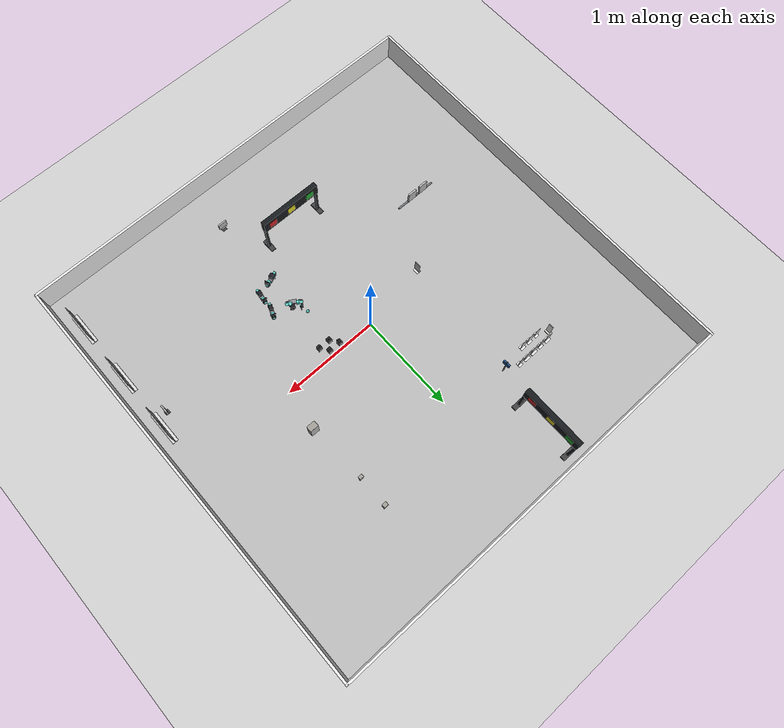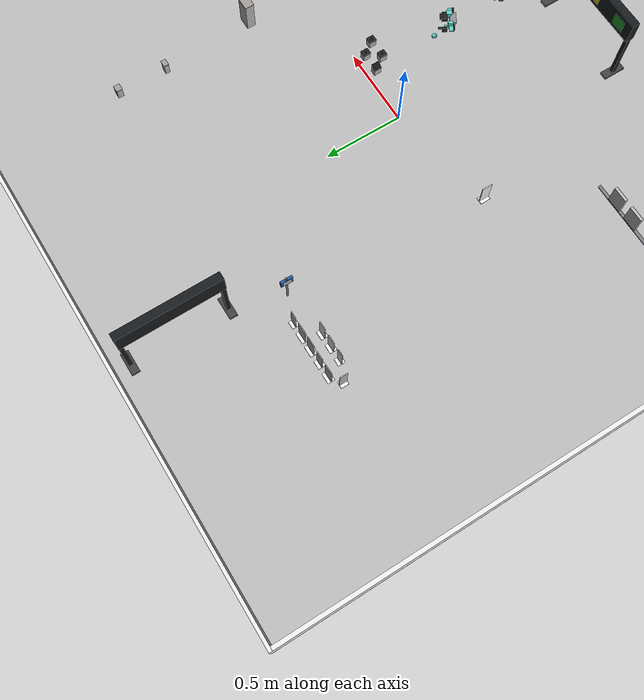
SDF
<sdf version="1.6">
 <world name="competition_arena">
  <physics name="arena_physics" default="0" type="ode">
   <max_step_size>0.002</max_step_size>
   <real_time_factor>1.0</real_time_factor>
   <real_time_update_rate>500</real_time_update_rate>
   <ode><solver><type>quick</type><iters>50</iters><sor>1.3</sor></solver></ode>
  </physics>
  <include><uri>model://sun</uri></include>
  <model name="arena_floor">
   <static>true</static>
   <pose>0 0 -0.01000 0 0 0</pose>
   <link name="link">
    <collision name="collision">
     <geometry><box><size>4.400 4.400 0.0200</size></box></geometry>
     <surface>
      <friction><ode><mu>1.0</mu><mu2>1.0</mu2></ode></friction>
      <contact><ode><kp>1e10</kp><kd>1</kd></ode></contact>
     </surface>
    </collision>
    <visual name="visual">
     <geometry><box><size>4.400 4.400 0.0200</size></box></geometry>
     <material>
      <script><uri>file://media/materials/scripts/arena.material</uri><name>Arena/Floor</name></script>
     </material>
    </visual>
   </link>
  </model>
  <include><uri>model://ground_plane</uri><pose>0 0 -0.002 0 0 0</pose></include>
  <model name="arena_walls">
   <static>true</static>
   <link name="walls">
    <collision name="wall_00">
     <pose>-0.000000 2.189289 0.150000 0 0 0</pose>
     <geometry><box><size>4.399182 0.020605 0.300000</size></box></geometry>
    </collision>
    <visual name="wall_00">
     <pose>-0.000000 2.189289 0.150000 0 0 0</pose>
     <geometry><box><size>4.399182 0.020605 0.300000</size></box></geometry>
     <material>
      <script><uri>file://media/materials/scripts/gazebo.material</uri><name>Gazebo/White</name></script>
     </material>
    </visual>
    <collision name="wall_01">
     <pose>-0.000000 -2.187572 0.150000 0 0 0</pose>
     <geometry><box><size>4.399182 0.024039 0.300000</size></box></geometry>
    </collision>
    <visual name="wall_01">
     <pose>-0.000000 -2.187572 0.150000 0 0 0</pose>
     <geometry><box><size>4.399182 0.024039 0.300000</size></box></geometry>
     <material>
      <script><uri>file://media/materials/scripts/gazebo.material</uri><name>Gazebo/White</name></script>
     </material>
    </visual>
    <collision name="wall_02">
     <pose>-2.187572 0.000000 0.150000 0 0 0</pose>
     <geometry><box><size>0.024039 4.399182 0.300000</size></box></geometry>
    </collision>
    <visual name="wall_02">
     <pose>-2.187572 0.000000 0.150000 0 0 0</pose>
     <geometry><box><size>0.024039 4.399182 0.300000</size></box></geometry>
     <material>
      <script><uri>file://media/materials/scripts/gazebo.material</uri><name>Gazebo/White</name></script>
     </material>
    </visual>
    <collision name="wall_03">
     <pose>2.187572 0.000000 0.150000 0 0 0</pose>
     <geometry><box><size>0.024039 4.399182 0.300000</size></box></geometry>
    </collision>
    <visual name="wall_03">
     <pose>2.187572 0.000000 0.150000 0 0 0</pose>
     <geometry><box><size>0.024039 4.399182 0.300000</size></box></geometry>
     <material>
      <script><uri>file://media/materials/scripts/gazebo.material</uri><name>Gazebo/White</name></script>
     </material>
    </visual>
   </link>
  </model>
  <include>
   <uri>model://standee_c01</uri>
   <name>A_north_1</name>
   <pose>-1.1420 1.2080 0 0 0 -1.5708</pose>
  </include>
  <include>
   <uri>model://standee_c02</uri>
   <name>A_north_2</name>
   <pose>-1.0520 1.2080 0 0 0 -1.5708</pose>
  </include>
  <include>
   <uri>model://standee_c03</uri>
   <name>A_north_3</name>
   <pose>-0.9620 1.2080 0 0 0 -1.5708</pose>
  </include>
  <include>
   <uri>model://standee_c04</uri>
   <name>A_north_4</name>
   <pose>-0.8720 1.2080 0 0 0 -1.5708</pose>
  </include>
  <include>
   <uri>model://standee_c05</uri>
   <name>A_north_5</name>
   <pose>-0.7820 1.2080 0 0 0 -1.5708</pose>
  </include>
  <include>
   <uri>model://standee_c06</uri>
   <name>A_south_1</name>
   <pose>-1.0970 1.1070 0 0 0 1.5708</pose>
  </include>
  <include>
   <uri>model://standee_c07</uri>
   <name>A_south_2</name>
   <pose>-1.0070 1.1070 0 0 0 1.5708</pose>
  </include>
  <include>
   <uri>model://standee_c08</uri>
   <name>A_south_3</name>
   <pose>-0.9170 1.1070 0 0 0 1.5708</pose>
  </include>
  <include><uri>model://standee_F1</uri><name>A_west_1</name><pose>-1.2120 1.1575 0 0 0 0.0000</pose></include>
  <include><uri>model://standee_F2</uri><name>B_east_2</name><pose>-0.7070 -0.1250 0 0 0 3.1416</pose></include>
  <include>
   <uri>model://traffic_light_h</uri>
   <name>tl_top</name>
   <pose>-0.5060 1.7790 0.0020 0 0 0.0000</pose>
  </include>
  <include>
   <uri>model://traffic_light_h</uri>
   <name>tl_bot</name>
   <pose>-0.1100 -1.2800 0.0020 0 0 1.5708</pose>
  </include>
  <include><uri>model://car_1</uri><name>car_1_p</name><pose>2.0560 -0.5010 0 0 0 3.1416</pose></include>
  <include><uri>model://car_2</uri><name>car_2_p</name><pose>2.0560 -1.1245 0 0 0 3.1416</pose></include>
  <include><uri>model://car_3</uri><name>car_3_p</name><pose>2.0560 -1.7620 0 0 0 3.1416</pose></include>
  <include><uri>model://bldg_15</uri><name>bldg_15</name><pose>1.0200 1.3400 0 0 0 3.1416</pose></include>
  <include><uri>model://bldg_11</uri><name>bldg_11</name><pose>1.0200 1.0200 0 0 0 3.1416</pose></include>
  <include><uri>model://bldg_20</uri><name>bldg_20</name><pose>1.0600 0.4200 0 0 0 3.1416</pose></include>
  <include><uri>model://bin_red</uri><name>bin_1</name><pose>0.3400 -0.0600 0 0 0 0.0000</pose></include>
  <include><uri>model://bin_blue</uri><name>bin_2</name><pose>0.4000 -0.1400 0 0 0 0.0000</pose></include>
  <include><uri>model://bin_green</uri><name>bin_3</name><pose>0.4600 -0.0600 0 0 0 0.0000</pose></include>
  <include><uri>model://bin_gray</uri><name>bin_4</name><pose>0.5200 -0.1400 0 0 0 0.0000</pose></include>
  <include><uri>model://ebike</uri><name>ebike_1</name><pose>0.6200 -0.7200 0 0 0 1.2000</pose></include>
  <include><uri>model://ebike</uri><name>ebike_2</name><pose>0.6000 -0.9000 0 0 0 1.4500</pose></include>
  <include>
   <uri>model://ebike_toppled</uri>
   <name>ebike_3</name>
   <pose>0.4000 -0.6600 0 0 0 2.6000</pose>
  </include>
  <include><uri>model://ebike</uri><name>ebike_4</name><pose>0.4200 -0.9800 0 0 0 0.4000</pose></include>
  <include><uri>model://helmet</uri><name>helmet_1</name><pose>0.3600 -0.5000 0 0 0 0.4000</pose></include>
  <include><uri>model://gauge</uri><name>gauge_1</name><pose>0.4200 -1.7200 0 0 0 0.0000</pose></include>
  <include><uri>model://gauge</uri><name>gauge_2</name><pose>1.9500 -0.6000 0 0 0 -1.5708</pose></include>
  <include><uri>model://sign</uri><name>sign_1</name><pose>-0.6200 1.1500 0 0 0 -1.5708</pose></include>
  <include><uri>model://heat_ok</uri><name>heat_1</name><pose>-1.3000 -0.7200 0 0 0 0.0000</pose></include>
  <include><uri>model://heat_bad</uri><name>heat_2</name><pose>-1.1600 -0.7200 0 0 0 0.0000</pose></include>
 </world>
</sdf>

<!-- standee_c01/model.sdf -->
<sdf version="1.7">
  <model name="standee_c01">
    <static>true</static>
    <link name="link">
      <visual name="board">
        <pose>0 0 0.0790 0 0 0</pose>
        <geometry><box><size>0.0050 0.0661 0.1500</size></box></geometry>
        <material><ambient>0.94 0.94 0.93 1</ambient><diffuse>0.94 0.94 0.93 1</diffuse></material>
      </visual>
      <visual name="art">
        <pose>-0.0020 0 0.0790 0 0 0</pose>
        <geometry><box><size>0.0012 0.0661 0.1500</size></box></geometry>
        <material>
          <script>
            <uri>model://standee_c01/materials/scripts</uri>
            <uri>model://standee_c01/materials/textures</uri>
            <name>Standee/c01</name>
          </script>
        </material>
      </visual>
      <visual name="base">
        <pose>0 0 0.0020 0 0 0</pose>
        <geometry><box><size>0.0450 0.0661 0.0040</size></box></geometry>
        <material><ambient>0.92 0.92 0.92 1</ambient><diffuse>0.92 0.92 0.92 1</diffuse></material>
      </visual>
      <collision name="col">
        <pose>0 0 0.0790 0 0 0</pose>
        <geometry><box><size>0.0050 0.0500 0.1500</size></box></geometry>
      </collision>
      <collision name="base_c">
        <pose>0 0 0.0020 0 0 0</pose>
        <geometry><box><size>0.0450 0.0661 0.0040</size></box></geometry>
      </collision>
    </link>
  </model>
</sdf>

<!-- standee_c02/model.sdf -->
<sdf version="1.7">
  <model name="standee_c02">
    <static>true</static>
    <link name="link">
      <visual name="board">
        <pose>0 0 0.0790 0 0 0</pose>
        <geometry><box><size>0.0050 0.0542 0.1500</size></box></geometry>
        <material><ambient>0.94 0.94 0.93 1</ambient><diffuse>0.94 0.94 0.93 1</diffuse></material>
      </visual>
      <visual name="art">
        <pose>-0.0020 0 0.0790 0 0 0</pose>
        <geometry><box><size>0.0012 0.0542 0.1500</size></box></geometry>
        <material>
          <script>
            <uri>model://standee_c02/materials/scripts</uri>
            <uri>model://standee_c02/materials/textures</uri>
            <name>Standee/c02</name>
          </script>
        </material>
      </visual>
      <visual name="base">
        <pose>0 0 0.0020 0 0 0</pose>
        <geometry><box><size>0.0450 0.0542 0.0040</size></box></geometry>
        <material><ambient>0.92 0.92 0.92 1</ambient><diffuse>0.92 0.92 0.92 1</diffuse></material>
      </visual>
      <collision name="col">
        <pose>0 0 0.0790 0 0 0</pose>
        <geometry><box><size>0.0050 0.0500 0.1500</size></box></geometry>
      </collision>
      <collision name="base_c">
        <pose>0 0 0.0020 0 0 0</pose>
        <geometry><box><size>0.0450 0.0542 0.0040</size></box></geometry>
      </collision>
    </link>
  </model>
</sdf>

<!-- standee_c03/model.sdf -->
<sdf version="1.7">
  <model name="standee_c03">
    <static>true</static>
    <link name="link">
      <visual name="board">
        <pose>0 0 0.0790 0 0 0</pose>
        <geometry><box><size>0.0050 0.0702 0.1500</size></box></geometry>
        <material><ambient>0.94 0.94 0.93 1</ambient><diffuse>0.94 0.94 0.93 1</diffuse></material>
      </visual>
      <visual name="art">
        <pose>-0.0020 0 0.0790 0 0 0</pose>
        <geometry><box><size>0.0012 0.0702 0.1500</size></box></geometry>
        <material>
          <script>
            <uri>model://standee_c03/materials/scripts</uri>
            <uri>model://standee_c03/materials/textures</uri>
            <name>Standee/c03</name>
          </script>
        </material>
      </visual>
      <visual name="base">
        <pose>0 0 0.0020 0 0 0</pose>
        <geometry><box><size>0.0450 0.0702 0.0040</size></box></geometry>
        <material><ambient>0.92 0.92 0.92 1</ambient><diffuse>0.92 0.92 0.92 1</diffuse></material>
      </visual>
      <collision name="col">
        <pose>0 0 0.0790 0 0 0</pose>
        <geometry><box><size>0.0050 0.0500 0.1500</size></box></geometry>
      </collision>
      <collision name="base_c">
        <pose>0 0 0.0020 0 0 0</pose>
        <geometry><box><size>0.0450 0.0702 0.0040</size></box></geometry>
      </collision>
    </link>
  </model>
</sdf>

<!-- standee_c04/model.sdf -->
<sdf version="1.7">
  <model name="standee_c04">
    <static>true</static>
    <link name="link">
      <visual name="board">
        <pose>0 0 0.0790 0 0 0</pose>
        <geometry><box><size>0.0050 0.0703 0.1500</size></box></geometry>
        <material><ambient>0.94 0.94 0.93 1</ambient><diffuse>0.94 0.94 0.93 1</diffuse></material>
      </visual>
      <visual name="art">
        <pose>-0.0020 0 0.0790 0 0 0</pose>
        <geometry><box><size>0.0012 0.0703 0.1500</size></box></geometry>
        <material>
          <script>
            <uri>model://standee_c04/materials/scripts</uri>
            <uri>model://standee_c04/materials/textures</uri>
            <name>Standee/c04</name>
          </script>
        </material>
      </visual>
      <visual name="base">
        <pose>0 0 0.0020 0 0 0</pose>
        <geometry><box><size>0.0450 0.0703 0.0040</size></box></geometry>
        <material><ambient>0.92 0.92 0.92 1</ambient><diffuse>0.92 0.92 0.92 1</diffuse></material>
      </visual>
      <collision name="col">
        <pose>0 0 0.0790 0 0 0</pose>
        <geometry><box><size>0.0050 0.0500 0.1500</size></box></geometry>
      </collision>
      <collision name="base_c">
        <pose>0 0 0.0020 0 0 0</pose>
        <geometry><box><size>0.0450 0.0703 0.0040</size></box></geometry>
      </collision>
    </link>
  </model>
</sdf>

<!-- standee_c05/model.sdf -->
<sdf version="1.7">
  <model name="standee_c05">
    <static>true</static>
    <link name="link">
      <visual name="board">
        <pose>0 0 0.0790 0 0 0</pose>
        <geometry><box><size>0.0050 0.0476 0.1500</size></box></geometry>
        <material><ambient>0.94 0.94 0.93 1</ambient><diffuse>0.94 0.94 0.93 1</diffuse></material>
      </visual>
      <visual name="art">
        <pose>-0.0020 0 0.0790 0 0 0</pose>
        <geometry><box><size>0.0012 0.0476 0.1500</size></box></geometry>
        <material>
          <script>
            <uri>model://standee_c05/materials/scripts</uri>
            <uri>model://standee_c05/materials/textures</uri>
            <name>Standee/c05</name>
          </script>
        </material>
      </visual>
      <visual name="base">
        <pose>0 0 0.0020 0 0 0</pose>
        <geometry><box><size>0.0450 0.0476 0.0040</size></box></geometry>
        <material><ambient>0.92 0.92 0.92 1</ambient><diffuse>0.92 0.92 0.92 1</diffuse></material>
      </visual>
      <collision name="col">
        <pose>0 0 0.0790 0 0 0</pose>
        <geometry><box><size>0.0050 0.0500 0.1500</size></box></geometry>
      </collision>
      <collision name="base_c">
        <pose>0 0 0.0020 0 0 0</pose>
        <geometry><box><size>0.0450 0.0476 0.0040</size></box></geometry>
      </collision>
    </link>
  </model>
</sdf>

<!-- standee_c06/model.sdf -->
<sdf version="1.7">
  <model name="standee_c06">
    <static>true</static>
    <link name="link">
      <visual name="board">
        <pose>0 0 0.0790 0 0 0</pose>
        <geometry><box><size>0.0050 0.0460 0.1500</size></box></geometry>
        <material><ambient>0.94 0.94 0.93 1</ambient><diffuse>0.94 0.94 0.93 1</diffuse></material>
      </visual>
      <visual name="art">
        <pose>-0.0020 0 0.0790 0 0 0</pose>
        <geometry><box><size>0.0012 0.0460 0.1500</size></box></geometry>
        <material>
          <script>
            <uri>model://standee_c06/materials/scripts</uri>
            <uri>model://standee_c06/materials/textures</uri>
            <name>Standee/c06</name>
          </script>
        </material>
      </visual>
      <visual name="base">
        <pose>0 0 0.0020 0 0 0</pose>
        <geometry><box><size>0.0450 0.0460 0.0040</size></box></geometry>
        <material><ambient>0.92 0.92 0.92 1</ambient><diffuse>0.92 0.92 0.92 1</diffuse></material>
      </visual>
      <collision name="col">
        <pose>0 0 0.0790 0 0 0</pose>
        <geometry><box><size>0.0050 0.0500 0.1500</size></box></geometry>
      </collision>
      <collision name="base_c">
        <pose>0 0 0.0020 0 0 0</pose>
        <geometry><box><size>0.0450 0.0460 0.0040</size></box></geometry>
      </collision>
    </link>
  </model>
</sdf>

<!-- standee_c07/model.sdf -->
<sdf version="1.7">
  <model name="standee_c07">
    <static>true</static>
    <link name="link">
      <visual name="board">
        <pose>0 0 0.0790 0 0 0</pose>
        <geometry><box><size>0.0050 0.0579 0.1500</size></box></geometry>
        <material><ambient>0.94 0.94 0.93 1</ambient><diffuse>0.94 0.94 0.93 1</diffuse></material>
      </visual>
      <visual name="art">
        <pose>-0.0020 0 0.0790 0 0 0</pose>
        <geometry><box><size>0.0012 0.0579 0.1500</size></box></geometry>
        <material>
          <script>
            <uri>model://standee_c07/materials/scripts</uri>
            <uri>model://standee_c07/materials/textures</uri>
            <name>Standee/c07</name>
          </script>
        </material>
      </visual>
      <visual name="base">
        <pose>0 0 0.0020 0 0 0</pose>
        <geometry><box><size>0.0450 0.0579 0.0040</size></box></geometry>
        <material><ambient>0.92 0.92 0.92 1</ambient><diffuse>0.92 0.92 0.92 1</diffuse></material>
      </visual>
      <collision name="col">
        <pose>0 0 0.0790 0 0 0</pose>
        <geometry><box><size>0.0050 0.0500 0.1500</size></box></geometry>
      </collision>
      <collision name="base_c">
        <pose>0 0 0.0020 0 0 0</pose>
        <geometry><box><size>0.0450 0.0579 0.0040</size></box></geometry>
      </collision>
    </link>
  </model>
</sdf>

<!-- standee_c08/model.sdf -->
<sdf version="1.7">
  <model name="standee_c08">
    <static>true</static>
    <link name="link">
      <visual name="board">
        <pose>0 0 0.0790 0 0 0</pose>
        <geometry><box><size>0.0050 0.0553 0.1500</size></box></geometry>
        <material><ambient>0.94 0.94 0.93 1</ambient><diffuse>0.94 0.94 0.93 1</diffuse></material>
      </visual>
      <visual name="art">
        <pose>-0.0020 0 0.0790 0 0 0</pose>
        <geometry><box><size>0.0012 0.0553 0.1500</size></box></geometry>
        <material>
          <script>
            <uri>model://standee_c08/materials/scripts</uri>
            <uri>model://standee_c08/materials/textures</uri>
            <name>Standee/c08</name>
          </script>
        </material>
      </visual>
      <visual name="base">
        <pose>0 0 0.0020 0 0 0</pose>
        <geometry><box><size>0.0450 0.0553 0.0040</size></box></geometry>
        <material><ambient>0.92 0.92 0.92 1</ambient><diffuse>0.92 0.92 0.92 1</diffuse></material>
      </visual>
      <collision name="col">
        <pose>0 0 0.0790 0 0 0</pose>
        <geometry><box><size>0.0050 0.0500 0.1500</size></box></geometry>
      </collision>
      <collision name="base_c">
        <pose>0 0 0.0020 0 0 0</pose>
        <geometry><box><size>0.0450 0.0553 0.0040</size></box></geometry>
      </collision>
    </link>
  </model>
</sdf>

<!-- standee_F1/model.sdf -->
<sdf version="1.7">
  <model name="standee_F1">
    <static>true</static>
    <link name="link">
      <visual name="board">
        <pose>0 0 0.0790 0 0 0</pose>
        <geometry><box><size>0.0050 0.0497 0.1500</size></box></geometry>
        <material><ambient>0.94 0.94 0.93 1</ambient><diffuse>0.94 0.94 0.93 1</diffuse></material>
      </visual>
      <visual name="art">
        <pose>-0.0020 0 0.0790 0 0 0</pose>
        <geometry><box><size>0.0012 0.0497 0.1500</size></box></geometry>
        <material>
          <script>
            <uri>model://standee_F1/materials/scripts</uri>
            <uri>model://standee_F1/materials/textures</uri>
            <name>Standee/F1</name>
          </script>
        </material>
      </visual>
      <visual name="base">
        <pose>0 0 0.0020 0 0 0</pose>
        <geometry><box><size>0.0450 0.0497 0.0040</size></box></geometry>
        <material><ambient>0.92 0.92 0.92 1</ambient><diffuse>0.92 0.92 0.92 1</diffuse></material>
      </visual>
      <collision name="col">
        <pose>0 0 0.0790 0 0 0</pose>
        <geometry><box><size>0.0050 0.0500 0.1500</size></box></geometry>
      </collision>
      <collision name="base_c">
        <pose>0 0 0.0020 0 0 0</pose>
        <geometry><box><size>0.0450 0.0497 0.0040</size></box></geometry>
      </collision>
    </link>
  </model>
</sdf>

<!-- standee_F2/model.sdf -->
<sdf version="1.7">
  <model name="standee_F2">
    <static>true</static>
    <link name="link">
      <visual name="board">
        <pose>0 0 0.0790 0 0 0</pose>
        <geometry><box><size>0.0050 0.0642 0.1500</size></box></geometry>
        <material><ambient>0.94 0.94 0.93 1</ambient><diffuse>0.94 0.94 0.93 1</diffuse></material>
      </visual>
      <visual name="art">
        <pose>-0.0020 0 0.0790 0 0 0</pose>
        <geometry><box><size>0.0012 0.0642 0.1500</size></box></geometry>
        <material>
          <script>
            <uri>model://standee_F2/materials/scripts</uri>
            <uri>model://standee_F2/materials/textures</uri>
            <name>Standee/F2</name>
          </script>
        </material>
      </visual>
      <visual name="base">
        <pose>0 0 0.0020 0 0 0</pose>
        <geometry><box><size>0.0450 0.0642 0.0040</size></box></geometry>
        <material><ambient>0.92 0.92 0.92 1</ambient><diffuse>0.92 0.92 0.92 1</diffuse></material>
      </visual>
      <collision name="col">
        <pose>0 0 0.0790 0 0 0</pose>
        <geometry><box><size>0.0050 0.0500 0.1500</size></box></geometry>
      </collision>
      <collision name="base_c">
        <pose>0 0 0.0020 0 0 0</pose>
        <geometry><box><size>0.0450 0.0642 0.0040</size></box></geometry>
      </collision>
    </link>
  </model>
</sdf>

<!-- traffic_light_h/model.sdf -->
<sdf version="1.7">
  <model name="traffic_light_h">
    <!-- 按官方尺寸生成, 见 tools/setup_traffic_lights.py 顶部说明 -->
    <static>false</static>
    <self_collide>false</self_collide>
    <link name="base">
      <gravity>false</gravity>
      <inertial><pose>0 0 0.410 0 0 0</pose><mass>8</mass><inertia><ixx>0.009</ixx><ixy>0</ixy><ixz>0</ixz><iyy>0.139</iyy><iyz>0</iyz><izz>0.143</izz></inertia></inertial>
      <visual name="housing"><pose>0 0 0.410 0 0 0</pose><geometry><box><size>0.050 0.640 0.140</size></box></geometry><material><ambient>0.090 0.102 0.110 1.00</ambient><diffuse>0.090 0.102 0.110 1.00</diffuse></material></visual>
      <collision name="housing_c"><pose>0 0 0.410 0 0 0</pose><geometry><box><size>0.050 0.640 0.140</size></box></geometry></collision>
      <visual name="post0"><pose>0 -0.307 0.170 0 0 0</pose><geometry><box><size>0.025 0.025 0.340</size></box></geometry><material><ambient>0.090 0.102 0.110 1.00</ambient><diffuse>0.090 0.102 0.110 1.00</diffuse></material></visual>
      <collision name="post0_c"><pose>0 -0.307 0.170 0 0 0</pose><geometry><box><size>0.025 0.025 0.340</size></box></geometry><surface><friction><ode><mu>5.0</mu><mu2>5.0</mu2></ode></friction></surface></collision>
      <visual name="foot0"><pose>0 -0.307 0.006 0 0 0</pose><geometry><box><size>0.140 0.050 0.012</size></box></geometry><material><ambient>0.25 0.25 0.26 1</ambient><diffuse>0.25 0.25 0.26 1</diffuse></material></visual>
      <collision name="foot0_c"><pose>0 -0.307 0.006 0 0 0</pose><geometry><box><size>0.140 0.050 0.012</size></box></geometry><surface><friction><ode><mu>5.0</mu><mu2>5.0</mu2></ode></friction></surface></collision>
      <visual name="post1"><pose>0 0.307 0.170 0 0 0</pose><geometry><box><size>0.025 0.025 0.340</size></box></geometry><material><ambient>0.090 0.102 0.110 1.00</ambient><diffuse>0.090 0.102 0.110 1.00</diffuse></material></visual>
      <collision name="post1_c"><pose>0 0.307 0.170 0 0 0</pose><geometry><box><size>0.025 0.025 0.340</size></box></geometry><surface><friction><ode><mu>5.0</mu><mu2>5.0</mu2></ode></friction></surface></collision>
      <visual name="foot1"><pose>0 0.307 0.006 0 0 0</pose><geometry><box><size>0.140 0.050 0.012</size></box></geometry><material><ambient>0.25 0.25 0.26 1</ambient><diffuse>0.25 0.25 0.26 1</diffuse></material></visual>
      <collision name="foot1_c"><pose>0 0.307 0.006 0 0 0</pose><geometry><box><size>0.140 0.050 0.012</size></box></geometry><surface><friction><ode><mu>5.0</mu><mu2>5.0</mu2></ode></friction></surface></collision>
      <visual name="lens_red"><pose>0.0255 -0.220 0.410 0 1.5708 0</pose><geometry><cylinder><radius>0.0425</radius><length>0.0060</length></cylinder></geometry><material><ambient>0.090 0.102 0.110 1.00</ambient><diffuse>0.090 0.102 0.110 1.00</diffuse></material></visual>
      <visual name="lensface_red"><pose>0.0291 -0.220 0.410 0 0 0</pose><geometry><box><size>0.0012 0.0860 0.0860</size></box></geometry><material><script><uri>model://traffic_light_h/materials/scripts</uri><uri>model://traffic_light_h/materials/textures</uri><name>LightLens/red_off</name></script></material></visual>
      <visual name="lens_yellow"><pose>0.0255 0.000 0.410 0 1.5708 0</pose><geometry><cylinder><radius>0.0425</radius><length>0.0060</length></cylinder></geometry><material><ambient>0.090 0.102 0.110 1.00</ambient><diffuse>0.090 0.102 0.110 1.00</diffuse></material></visual>
      <visual name="lensface_yellow"><pose>0.0291 0.000 0.410 0 0 0</pose><geometry><box><size>0.0012 0.0860 0.0860</size></box></geometry><material><script><uri>model://traffic_light_h/materials/scripts</uri><uri>model://traffic_light_h/materials/textures</uri><name>LightLens/yellow_off</name></script></material></visual>
      <visual name="lens_green"><pose>0.0255 0.220 0.410 0 1.5708 0</pose><geometry><cylinder><radius>0.0425</radius><length>0.0060</length></cylinder></geometry><material><ambient>0.090 0.102 0.110 1.00</ambient><diffuse>0.090 0.102 0.110 1.00</diffuse></material></visual>
      <visual name="lensface_green"><pose>0.0291 0.220 0.410 0 0 0</pose><geometry><box><size>0.0012 0.0860 0.0860</size></box></geometry><material><script><uri>model://traffic_light_h/materials/scripts</uri><uri>model://traffic_light_h/materials/textures</uri><name>LightLens/green_off</name></script></material></visual>
    </link>
    <link name="lamp_red"><gravity>false</gravity><pose>0.0000 -0.220 0.410 0 0 0</pose><inertial><mass>0.02</mass><inertia><ixx>1e-5</ixx><ixy>0</ixy><ixz>0</ixz><iyy>1e-5</iyy><iyz>0</iyz><izz>1e-5</izz></inertia></inertial><visual name="lamp"><pose>0 0 0 0 1.5708 0</pose><geometry><cylinder><radius>0.0425</radius><length>0.0040</length></cylinder></geometry><material><ambient>0.969 0.227 0.086 1.00</ambient><diffuse>0.969 0.227 0.086 1.00</diffuse><emissive>0.969 0.227 0.086 1.00</emissive></material></visual><visual name="lampface"><pose>0.0026 0 0 0 0 0</pose><geometry><box><size>0.0012 0.0860 0.0860</size></box></geometry><material><script><uri>model://traffic_light_h/materials/scripts</uri><uri>model://traffic_light_h/materials/textures</uri><name>LightLamp/red_on</name></script></material></visual></link>
    <joint name="j_red" type="prismatic"><parent>base</parent><child>lamp_red</child><pose>0 0 0 0 0 0</pose><axis><xyz>1 0 0</xyz><limit><lower>0.000</lower><upper>0.035</upper><effort>1</effort><velocity>1</velocity></limit></axis></joint>
    <link name="lamp_yellow"><gravity>false</gravity><pose>0.0000 0.000 0.410 0 0 0</pose><inertial><mass>0.02</mass><inertia><ixx>1e-5</ixx><ixy>0</ixy><ixz>0</ixz><iyy>1e-5</iyy><iyz>0</iyz><izz>1e-5</izz></inertia></inertial><visual name="lamp"><pose>0 0 0 0 1.5708 0</pose><geometry><cylinder><radius>0.0425</radius><length>0.0040</length></cylinder></geometry><material><ambient>0.988 0.976 0.188 1.00</ambient><diffuse>0.988 0.976 0.188 1.00</diffuse><emissive>0.988 0.976 0.188 1.00</emissive></material></visual><visual name="lampface"><pose>0.0026 0 0 0 0 0</pose><geometry><box><size>0.0012 0.0860 0.0860</size></box></geometry><material><script><uri>model://traffic_light_h/materials/scripts</uri><uri>model://traffic_light_h/materials/textures</uri><name>LightLamp/yellow_on</name></script></material></visual></link>
    <joint name="j_yellow" type="prismatic"><parent>base</parent><child>lamp_yellow</child><pose>0 0 0 0 0 0</pose><axis><xyz>1 0 0</xyz><limit><lower>0.000</lower><upper>0.035</upper><effort>1</effort><velocity>1</velocity></limit></axis></joint>
    <link name="lamp_green"><gravity>false</gravity><pose>0.0000 0.220 0.410 0 0 0</pose><inertial><mass>0.02</mass><inertia><ixx>1e-5</ixx><ixy>0</ixy><ixz>0</ixz><iyy>1e-5</iyy><iyz>0</iyz><izz>1e-5</izz></inertia></inertial><visual name="lamp"><pose>0 0 0 0 1.5708 0</pose><geometry><cylinder><radius>0.0425</radius><length>0.0040</length></cylinder></geometry><material><ambient>0.086 0.941 0.529 1.00</ambient><diffuse>0.086 0.941 0.529 1.00</diffuse><emissive>0.086 0.941 0.529 1.00</emissive></material></visual><visual name="lampface"><pose>0.0026 0 0 0 0 0</pose><geometry><box><size>0.0012 0.0860 0.0860</size></box></geometry><material><script><uri>model://traffic_light_h/materials/scripts</uri><uri>model://traffic_light_h/materials/textures</uri><name>LightLamp/green_on</name></script></material></visual></link>
    <joint name="j_green" type="prismatic"><parent>base</parent><child>lamp_green</child><pose>0 0 0 0 0 0</pose><axis><xyz>1 0 0</xyz><limit><lower>0.000</lower><upper>0.035</upper><effort>1</effort><velocity>1</velocity></limit></axis></joint>
  </model>
</sdf>

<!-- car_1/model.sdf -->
<sdf version="1.7">
  <model name="car_1">
    <!-- 车辆立牌 + 车牌 (陕G·5JXFN)
         车板 0.345 x 0.250 x 0.005 m (官方 34.5 x 25 cm x 5mm)
         车牌 0.095 x 0.030 m (官方 9.5 x 3 cm), 贴在正面后保险杠中间 -->
    <static>true</static>
    <link name="link">
      <visual name="body">
        <pose>0 0 0.1310 0 0 0</pose>
        <geometry><box><size>0.0050 0.3450 0.2500</size></box></geometry>
        <material><script>
          <uri>model://car_1/materials/scripts</uri>
          <uri>model://car_1/materials/textures</uri>
          <name>Car/Body_car_1</name>
        </script></material>
      </visual>
      <visual name="plate">
        <pose>0.0040 0.0000 0.1225 0 0 0</pose>
        <geometry><box><size>0.0030 0.0950 0.0300</size></box></geometry>
        <material><script>
          <uri>model://car_1/materials/scripts</uri>
          <uri>model://car_1/materials/textures</uri>
          <name>Car/Plate_car_1</name>
        </script></material>
      </visual>
      <visual name="base">
        <pose>0 0 0.0030 0 0 0</pose>
        <geometry><box><size>0.060 0.3450 0.0060</size></box></geometry>
        <material><ambient>0.85 0.85 0.85 1</ambient><diffuse>0.85 0.85 0.85 1</diffuse></material>
      </visual>
      <collision name="col">
        <pose>0 0 0.1310 0 0 0</pose>
        <geometry><box><size>0.0050 0.3450 0.2500</size></box></geometry>
      </collision>
      <collision name="base_c">
        <pose>0 0 0.0030 0 0 0</pose>
        <geometry><box><size>0.060 0.3450 0.0060</size></box></geometry>
      </collision>
    </link>
  </model>
</sdf>

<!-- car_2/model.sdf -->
<sdf version="1.7">
  <model name="car_2">
    <!-- 车辆立牌 + 车牌 (陕W·5QG5S)
         车板 0.345 x 0.250 x 0.005 m (官方 34.5 x 25 cm x 5mm)
         车牌 0.095 x 0.030 m (官方 9.5 x 3 cm), 贴在正面后保险杠中间 -->
    <static>true</static>
    <link name="link">
      <visual name="body">
        <pose>0 0 0.1310 0 0 0</pose>
        <geometry><box><size>0.0050 0.3450 0.2500</size></box></geometry>
        <material><script>
          <uri>model://car_2/materials/scripts</uri>
          <uri>model://car_2/materials/textures</uri>
          <name>Car/Body_car_2</name>
        </script></material>
      </visual>
      <visual name="plate">
        <pose>0.0040 0.0000 0.1225 0 0 0</pose>
        <geometry><box><size>0.0030 0.0950 0.0300</size></box></geometry>
        <material><script>
          <uri>model://car_2/materials/scripts</uri>
          <uri>model://car_2/materials/textures</uri>
          <name>Car/Plate_car_2</name>
        </script></material>
      </visual>
      <visual name="base">
        <pose>0 0 0.0030 0 0 0</pose>
        <geometry><box><size>0.060 0.3450 0.0060</size></box></geometry>
        <material><ambient>0.85 0.85 0.85 1</ambient><diffuse>0.85 0.85 0.85 1</diffuse></material>
      </visual>
      <collision name="col">
        <pose>0 0 0.1310 0 0 0</pose>
        <geometry><box><size>0.0050 0.3450 0.2500</size></box></geometry>
      </collision>
      <collision name="base_c">
        <pose>0 0 0.0030 0 0 0</pose>
        <geometry><box><size>0.060 0.3450 0.0060</size></box></geometry>
      </collision>
    </link>
  </model>
</sdf>

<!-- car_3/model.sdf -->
<sdf version="1.7">
  <model name="car_3">
    <!-- 车辆立牌 + 车牌 (黑L·V006C)
         车板 0.345 x 0.250 x 0.005 m (官方 34.5 x 25 cm x 5mm)
         车牌 0.095 x 0.030 m (官方 9.5 x 3 cm), 贴在正面后保险杠中间 -->
    <static>true</static>
    <link name="link">
      <visual name="body">
        <pose>0 0 0.1310 0 0 0</pose>
        <geometry><box><size>0.0050 0.3450 0.2500</size></box></geometry>
        <material><script>
          <uri>model://car_3/materials/scripts</uri>
          <uri>model://car_3/materials/textures</uri>
          <name>Car/Body_car_3</name>
        </script></material>
      </visual>
      <visual name="plate">
        <pose>0.0040 0.0000 0.1225 0 0 0</pose>
        <geometry><box><size>0.0030 0.0950 0.0300</size></box></geometry>
        <material><script>
          <uri>model://car_3/materials/scripts</uri>
          <uri>model://car_3/materials/textures</uri>
          <name>Car/Plate_car_3</name>
        </script></material>
      </visual>
      <visual name="base">
        <pose>0 0 0.0030 0 0 0</pose>
        <geometry><box><size>0.060 0.3450 0.0060</size></box></geometry>
        <material><ambient>0.85 0.85 0.85 1</ambient><diffuse>0.85 0.85 0.85 1</diffuse></material>
      </visual>
      <collision name="col">
        <pose>0 0 0.1310 0 0 0</pose>
        <geometry><box><size>0.0050 0.3450 0.2500</size></box></geometry>
      </collision>
      <collision name="base_c">
        <pose>0 0 0.0030 0 0 0</pose>
        <geometry><box><size>0.060 0.3450 0.0060</size></box></geometry>
      </collision>
    </link>
  </model>
</sdf>

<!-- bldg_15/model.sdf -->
<sdf version="1.7">
  <model name="bldg_15">
    <static>true</static>
    <link name="link">
<visual name="wing"><pose>-0.0140 0 0.0259 0 0 0</pose><geometry><box><size>0.0220 0.0350 0.0518</size></box></geometry><material><script><uri>model://bldg_15/materials/scripts</uri><uri>model://bldg_15/materials/textures</uri><name>Facade</name></script></material></visual>
      <collision name="wing_c_c"><pose>-0.0140 0 0.0259 0 0 0</pose><geometry><box><size>0.0220 0.0350 0.0518</size></box></geometry></collision>
      <visual name="mass"><pose>0 0 0.0360 0 0 0</pose><geometry><box><size>0.0400 0.0350 0.0720</size></box></geometry><material><script><uri>model://bldg_15/materials/scripts</uri><uri>model://bldg_15/materials/textures</uri><name>Facade</name></script></material></visual>
      <collision name="mass_c_c"><pose>0 0 0.0360 0 0 0</pose><geometry><box><size>0.0400 0.0350 0.0720</size></box></geometry></collision>
      <visual name="roof"><pose>0 0 0.0740 0 0 0</pose><geometry><box><size>0.0440 0.0390 0.004</size></box></geometry><material><ambient>0.62 0.61 0.58 1</ambient><diffuse>0.62 0.61 0.58 1</diffuse></material></visual>
    </link>
  </model>
</sdf>

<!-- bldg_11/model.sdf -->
<sdf version="1.7">
  <model name="bldg_11">
    <static>true</static>
    <link name="link">
<visual name="mass"><pose>0 0 0.0390 0 0 0</pose><geometry><box><size>0.0400 0.0280 0.0780</size></box></geometry><material><script><uri>model://bldg_11/materials/scripts</uri><uri>model://bldg_11/materials/textures</uri><name>Facade</name></script></material></visual>
      <collision name="mass_c_c"><pose>0 0 0.0390 0 0 0</pose><geometry><box><size>0.0400 0.0280 0.0780</size></box></geometry></collision>
      <visual name="roof"><pose>0 0 0.0800 0 0 0</pose><geometry><box><size>0.0440 0.0320 0.004</size></box></geometry><material><ambient>0.62 0.61 0.58 1</ambient><diffuse>0.62 0.61 0.58 1</diffuse></material></visual>
    </link>
  </model>
</sdf>

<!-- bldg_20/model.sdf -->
<sdf version="1.7">
  <model name="bldg_20">
    <static>true</static>
    <link name="link">
<visual name="mass"><pose>0 0 0.1000 0 0 0</pose><geometry><box><size>0.0850 0.0550 0.2000</size></box></geometry><material><script><uri>model://bldg_20/materials/scripts</uri><uri>model://bldg_20/materials/textures</uri><name>Facade</name></script></material></visual>
      <collision name="mass_c_c"><pose>0 0 0.1000 0 0 0</pose><geometry><box><size>0.0850 0.0550 0.2000</size></box></geometry></collision>
      <visual name="roof"><pose>0 0 0.2020 0 0 0</pose><geometry><box><size>0.0890 0.0590 0.004</size></box></geometry><material><ambient>0.62 0.61 0.58 1</ambient><diffuse>0.62 0.61 0.58 1</diffuse></material></visual>
    </link>
  </model>
</sdf>

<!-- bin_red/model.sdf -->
<sdf version="1.7">
  <model name="bin_red">
    <static>true</static>
    <link name="link">
<visual name="body"><pose>0 0 0.0237 0 0 0</pose><geometry><box><size>0.0400 0.0450 0.0473</size></box></geometry><material><script><uri>model://bin_red/materials/scripts</uri><uri>model://bin_red/materials/textures</uri><name>Side</name></script></material></visual>
      <collision name="body_c_c"><pose>0 0 0.0237 0 0 0</pose><geometry><box><size>0.0400 0.0450 0.0473</size></box></geometry></collision>
      <visual name="lid"><pose>0.0000 0 0.0583 0 -0.62 0</pose><geometry><box><size>0.0424 0.0477 0.0055</size></box></geometry><material><ambient>0.13 0.13 0.14 1</ambient><diffuse>0.13 0.13 0.14 1</diffuse></material></visual>
      <collision name="lid_c_c"><pose>0.0000 0 0.0583 0 -0.62 0</pose><geometry><box><size>0.0424 0.0477 0.0055</size></box></geometry></collision>
      <visual name="handle"><pose>0 0 0.0534 0 0 0</pose><geometry><box><size>0.0180 0.006 0.004</size></box></geometry><material><ambient>0.10 0.10 0.11 1</ambient><diffuse>0.10 0.10 0.11 1</diffuse></material></visual>
      <visual name="trash0"><pose>-0.008 0.003 0.0484 0.00 0 0.00</pose><geometry><box><size>0.012 0.010 0.008</size></box></geometry><material><ambient>0.58 0.50 0.32 1</ambient><diffuse>0.58 0.50 0.32 1</diffuse></material></visual>
      <visual name="trash1"><pose>0.000 -0.003 0.0484 0.30 0 0.40</pose><geometry><box><size>0.012 0.010 0.008</size></box></geometry><material><ambient>0.58 0.50 0.32 1</ambient><diffuse>0.58 0.50 0.32 1</diffuse></material></visual>
      <visual name="trash2"><pose>0.008 0.003 0.0484 0.60 0 0.80</pose><geometry><box><size>0.012 0.010 0.008</size></box></geometry><material><ambient>0.58 0.50 0.32 1</ambient><diffuse>0.58 0.50 0.32 1</diffuse></material></visual>
    </link>
  </model>
</sdf>

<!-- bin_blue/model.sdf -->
<sdf version="1.7">
  <model name="bin_blue">
    <static>true</static>
    <link name="link">
<visual name="body"><pose>0 0 0.0237 0 0 0</pose><geometry><box><size>0.0400 0.0450 0.0473</size></box></geometry><material><script><uri>model://bin_blue/materials/scripts</uri><uri>model://bin_blue/materials/textures</uri><name>Side</name></script></material></visual>
      <collision name="body_c_c"><pose>0 0 0.0237 0 0 0</pose><geometry><box><size>0.0400 0.0450 0.0473</size></box></geometry></collision>
      <visual name="lid"><pose>0 0 0.0501 0 0 0</pose><geometry><box><size>0.0424 0.0477 0.0055</size></box></geometry><material><ambient>0.13 0.13 0.14 1</ambient><diffuse>0.13 0.13 0.14 1</diffuse></material></visual>
      <collision name="lid_c_c"><pose>0 0 0.0501 0 0 0</pose><geometry><box><size>0.0424 0.0477 0.0055</size></box></geometry></collision>
      <visual name="handle"><pose>0 0 0.0534 0 0 0</pose><geometry><box><size>0.0180 0.006 0.004</size></box></geometry><material><ambient>0.10 0.10 0.11 1</ambient><diffuse>0.10 0.10 0.11 1</diffuse></material></visual>
    </link>
  </model>
</sdf>

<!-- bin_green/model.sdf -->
<sdf version="1.7">
  <model name="bin_green">
    <static>true</static>
    <link name="link">
<visual name="body"><pose>0 0 0.0237 0 0 0</pose><geometry><box><size>0.0400 0.0450 0.0473</size></box></geometry><material><script><uri>model://bin_green/materials/scripts</uri><uri>model://bin_green/materials/textures</uri><name>Side</name></script></material></visual>
      <collision name="body_c_c"><pose>0 0 0.0237 0 0 0</pose><geometry><box><size>0.0400 0.0450 0.0473</size></box></geometry></collision>
      <visual name="lid"><pose>0 0 0.0501 0 0 0</pose><geometry><box><size>0.0424 0.0477 0.0055</size></box></geometry><material><ambient>0.13 0.13 0.14 1</ambient><diffuse>0.13 0.13 0.14 1</diffuse></material></visual>
      <collision name="lid_c_c"><pose>0 0 0.0501 0 0 0</pose><geometry><box><size>0.0424 0.0477 0.0055</size></box></geometry></collision>
      <visual name="handle"><pose>0 0 0.0534 0 0 0</pose><geometry><box><size>0.0180 0.006 0.004</size></box></geometry><material><ambient>0.10 0.10 0.11 1</ambient><diffuse>0.10 0.10 0.11 1</diffuse></material></visual>
    </link>
  </model>
</sdf>

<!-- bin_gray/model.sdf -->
<sdf version="1.7">
  <model name="bin_gray">
    <static>true</static>
    <link name="link">
<visual name="body"><pose>0 0 0.0237 0 0 0</pose><geometry><box><size>0.0400 0.0450 0.0473</size></box></geometry><material><script><uri>model://bin_gray/materials/scripts</uri><uri>model://bin_gray/materials/textures</uri><name>Side</name></script></material></visual>
      <collision name="body_c_c"><pose>0 0 0.0237 0 0 0</pose><geometry><box><size>0.0400 0.0450 0.0473</size></box></geometry></collision>
      <visual name="lid"><pose>0 0 0.0501 0 0 0</pose><geometry><box><size>0.0424 0.0477 0.0055</size></box></geometry><material><ambient>0.13 0.13 0.14 1</ambient><diffuse>0.13 0.13 0.14 1</diffuse></material></visual>
      <collision name="lid_c_c"><pose>0 0 0.0501 0 0 0</pose><geometry><box><size>0.0424 0.0477 0.0055</size></box></geometry></collision>
      <visual name="handle"><pose>0 0 0.0534 0 0 0</pose><geometry><box><size>0.0180 0.006 0.004</size></box></geometry><material><ambient>0.10 0.10 0.11 1</ambient><diffuse>0.10 0.10 0.11 1</diffuse></material></visual>
    </link>
  </model>
</sdf>

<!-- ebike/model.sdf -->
<sdf version="1.7">
  <model name="ebike">
    <static>true</static>
    <link name="link">
<visual name="deck"><pose>-0.0090 0.0000 0.0231 0 0 0.0000</pose><geometry><box><size>0.0720 0.0390 0.020</size></box></geometry><material><ambient>0.55 0.56 0.58 1</ambient><diffuse>0.55 0.56 0.58 1</diffuse></material></visual>
      <visual name="body_f"><pose>0.0360 0.0000 0.0408 0 0 0.0000</pose><geometry><box><size>0.0234 0.0310 0.048</size></box></geometry><material><ambient>0.36 0.80 0.76 1</ambient><diffuse>0.36 0.80 0.76 1</diffuse></material></visual>
      <visual name="body_r"><pose>-0.0360 0.0000 0.0480 0 0 0.0000</pose><geometry><box><size>0.0288 0.0350 0.052</size></box></geometry><material><ambient>0.36 0.80 0.76 1</ambient><diffuse>0.36 0.80 0.76 1</diffuse></material></visual>
      <visual name="seatbox"><pose>-0.0180 0.0000 0.0744 0 0 0.0000</pose><geometry><box><size>0.0468 0.0360 0.040</size></box></geometry><material><ambient>0.11 0.11 0.13 1</ambient><diffuse>0.11 0.11 0.13 1</diffuse></material></visual>
      <visual name="seat"><pose>-0.0216 0.0000 0.0864 0 0 0.0000</pose><geometry><box><size>0.0396 0.0340 0.010</size></box></geometry><material><ambient>0.11 0.11 0.13 1</ambient><diffuse>0.11 0.11 0.13 1</diffuse></material></visual>
      <visual name="stem"><pose>0.0576 0.0000 0.0744 0 0 0.0000</pose><geometry><box><size>0.012 0.0150 0.0360</size></box></geometry><material><ambient>0.36 0.80 0.76 1</ambient><diffuse>0.36 0.80 0.76 1</diffuse></material></visual>
      <visual name="bar"><pose>0.0612 0.0000 0.0912 0 0 0.0000</pose><geometry><box><size>0.010 0.0550 0.010</size></box></geometry><material><ambient>0.11 0.11 0.13 1</ambient><diffuse>0.11 0.11 0.13 1</diffuse></material></visual>
      <visual name="basket"><pose>0.0720 0.0000 0.0792 0 0 0.0000</pose><geometry><box><size>0.0198 0.0310 0.026</size></box></geometry><material><ambient>0.16 0.16 0.17 1</ambient><diffuse>0.16 0.16 0.17 1</diffuse></material></visual>
      <visual name="fender_f"><pose>0.0612 0.0000 0.0385 0 0 0.0000</pose><geometry><box><size>0.0484 0.0250 0.006</size></box></geometry><material><ambient>0.36 0.80 0.76 1</ambient><diffuse>0.36 0.80 0.76 1</diffuse></material></visual>
      <visual name="fender_r"><pose>-0.0612 0.0000 0.0385 0 0 0.0000</pose><geometry><box><size>0.0484 0.0250 0.006</size></box></geometry><material><ambient>0.36 0.80 0.76 1</ambient><diffuse>0.36 0.80 0.76 1</diffuse></material></visual>
      <visual name="wheel_f"><pose>0.0612 0.0000 0.0220 0 0 0.0000</pose><geometry><cylinder><radius>0.0220</radius><length>0.0080</length></cylinder></geometry><material><ambient>0.11 0.11 0.13 1</ambient><diffuse>0.11 0.11 0.13 1</diffuse></material></visual>
      <collision name="wheel_f_c_c"><pose>0.0612 0.0000 0.0220 0 0 0.0000</pose><geometry><cylinder><radius>0.0220</radius><length>0.0080</length></cylinder></geometry></collision>
      <visual name="wheel_r"><pose>-0.0612 0.0000 0.0220 0 0 0.0000</pose><geometry><cylinder><radius>0.0220</radius><length>0.0080</length></cylinder></geometry><material><ambient>0.11 0.11 0.13 1</ambient><diffuse>0.11 0.11 0.13 1</diffuse></material></visual>
      <collision name="wheel_r_c_c"><pose>-0.0612 0.0000 0.0220 0 0 0.0000</pose><geometry><cylinder><radius>0.0220</radius><length>0.0080</length></cylinder></geometry></collision>
      <visual name="kick"><pose>-0.0324 0.0225 0.0150 0 0 0.0000</pose><geometry><cylinder><radius>0.0035</radius><length>0.0300</length></cylinder></geometry><material><ambient>0.11 0.11 0.13 1</ambient><diffuse>0.11 0.11 0.13 1</diffuse></material></visual>
    </link>
  </model>
</sdf>

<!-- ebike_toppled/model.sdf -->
<sdf version="1.7">
  <model name="ebike_toppled">
    <static>true</static>
    <link name="link">
<visual name="deck"><pose>-0.0090 0.0059 0.0100 0.0000 0.0000 0</pose><geometry><box><size>0.0720 0.0390 0.020</size></box></geometry><material><ambient>0.55 0.56 0.58 1</ambient><diffuse>0.55 0.56 0.58 1</diffuse></material></visual>
      <visual name="body_f"><pose>0.0360 -0.0118 0.0100 0.0000 0.0000 0</pose><geometry><box><size>0.0234 0.0310 0.048</size></box></geometry><material><ambient>0.36 0.80 0.76 1</ambient><diffuse>0.36 0.80 0.76 1</diffuse></material></visual>
      <visual name="body_r"><pose>-0.0360 -0.0190 0.0100 0.0000 0.0000 0</pose><geometry><box><size>0.0288 0.0350 0.052</size></box></geometry><material><ambient>0.36 0.80 0.76 1</ambient><diffuse>0.36 0.80 0.76 1</diffuse></material></visual>
      <visual name="seatbox"><pose>-0.0180 -0.0454 0.0100 0.0000 0.0000 0</pose><geometry><box><size>0.0468 0.0360 0.040</size></box></geometry><material><ambient>0.11 0.11 0.13 1</ambient><diffuse>0.11 0.11 0.13 1</diffuse></material></visual>
      <visual name="seat"><pose>-0.0216 -0.0574 0.0100 0.0000 0.0000 0</pose><geometry><box><size>0.0396 0.0340 0.010</size></box></geometry><material><ambient>0.11 0.11 0.13 1</ambient><diffuse>0.11 0.11 0.13 1</diffuse></material></visual>
      <visual name="stem"><pose>0.0576 -0.0454 0.0100 0.0000 0.0000 0</pose><geometry><box><size>0.012 0.0150 0.0360</size></box></geometry><material><ambient>0.36 0.80 0.76 1</ambient><diffuse>0.36 0.80 0.76 1</diffuse></material></visual>
      <visual name="bar"><pose>0.0612 -0.0622 0.0100 0.0000 0.0000 0</pose><geometry><box><size>0.010 0.0550 0.010</size></box></geometry><material><ambient>0.11 0.11 0.13 1</ambient><diffuse>0.11 0.11 0.13 1</diffuse></material></visual>
      <visual name="basket"><pose>0.0720 -0.0502 0.0100 0.0000 0.0000 0</pose><geometry><box><size>0.0198 0.0310 0.026</size></box></geometry><material><ambient>0.16 0.16 0.17 1</ambient><diffuse>0.16 0.16 0.17 1</diffuse></material></visual>
      <visual name="fender_f"><pose>0.0612 -0.0095 0.0100 0.0000 0.0000 0</pose><geometry><box><size>0.0484 0.0250 0.006</size></box></geometry><material><ambient>0.36 0.80 0.76 1</ambient><diffuse>0.36 0.80 0.76 1</diffuse></material></visual>
      <visual name="fender_r"><pose>-0.0612 -0.0095 0.0100 0.0000 0.0000 0</pose><geometry><box><size>0.0484 0.0250 0.006</size></box></geometry><material><ambient>0.36 0.80 0.76 1</ambient><diffuse>0.36 0.80 0.76 1</diffuse></material></visual>
      <visual name="wheel_f"><pose>0.0612 0.0070 0.0100 1.5708 0.0000 0</pose><geometry><cylinder><radius>0.0220</radius><length>0.0080</length></cylinder></geometry><material><ambient>0.11 0.11 0.13 1</ambient><diffuse>0.11 0.11 0.13 1</diffuse></material></visual>
      <collision name="wheel_f_c_c"><pose>0.0612 0.0070 0.0100 1.5708 0.0000 0</pose><geometry><cylinder><radius>0.0220</radius><length>0.0080</length></cylinder></geometry></collision>
      <visual name="wheel_r"><pose>-0.0612 0.0070 0.0100 1.5708 0.0000 0</pose><geometry><cylinder><radius>0.0220</radius><length>0.0080</length></cylinder></geometry><material><ambient>0.11 0.11 0.13 1</ambient><diffuse>0.11 0.11 0.13 1</diffuse></material></visual>
      <collision name="wheel_r_c_c"><pose>-0.0612 0.0070 0.0100 1.5708 0.0000 0</pose><geometry><cylinder><radius>0.0220</radius><length>0.0080</length></cylinder></geometry></collision>
    </link>
  </model>
</sdf>

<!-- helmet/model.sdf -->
<sdf version="1.7">
  <model name="helmet">
    <static>true</static>
    <link name="link">
<visual name="shell"><pose>0 0 0.0104 0 0 0</pose><geometry><sphere><radius>0.0160</radius></sphere></geometry><material><ambient>0.36 0.80 0.76 1</ambient><diffuse>0.36 0.80 0.76 1</diffuse></material></visual>
      <collision name="shell_c"><pose>0 0 0.0104 0 0 0</pose><geometry><sphere><radius>0.0160</radius></sphere></geometry></collision>
      <visual name="brim"><pose>-0.0035 0 0.0084 0 0 0</pose><geometry><box><size>0.0261 0.010 0.006</size></box></geometry><material><ambient>0.20 0.20 0.22 1</ambient><diffuse>0.20 0.20 0.22 1</diffuse></material></visual>
    </link>
  </model>
</sdf>

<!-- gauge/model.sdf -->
<sdf version="1.7">
  <model name="gauge">
    <static>true</static>
    <link name="link">
<visual name="base"><pose>0 0 0.005 0 0 0</pose><geometry><box><size>0.0450 0.0420 0.010</size></box></geometry><material><ambient>0.35 0.36 0.38 1</ambient><diffuse>0.35 0.36 0.38 1</diffuse></material></visual>
      <collision name="base_c_c"><pose>0 0 0.005 0 0 0</pose><geometry><box><size>0.0450 0.0420 0.010</size></box></geometry></collision>
      <visual name="panel"><pose>0 0 0.0928 0 0 0</pose><geometry><box><size>0.0900 0.0150 0.0736</size></box></geometry><material><script><uri>model://gauge/materials/scripts</uri><uri>model://gauge/materials/textures</uri><name>Dial</name></script></material></visual>
      <collision name="panel_c_c"><pose>0 0 0.0928 0 0 0</pose><geometry><box><size>0.0900 0.0150 0.0736</size></box></geometry></collision>
      <visual name="post"><pose>0 0 0.0320 0 0 0</pose><geometry><box><size>0.014 0.0150 0.0640</size></box></geometry><material><ambient>0.48 0.49 0.52 1</ambient><diffuse>0.48 0.49 0.52 1</diffuse></material></visual>
      <visual name="tag"><pose>0 0.0105 0.0480 0 0 0</pose><geometry><box><size>0.0630 0.004 0.024</size></box></geometry><material><ambient>0.92 0.92 0.88 1</ambient><diffuse>0.92 0.92 0.88 1</diffuse></material></visual>
    </link>
  </model>
</sdf>

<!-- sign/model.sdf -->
<sdf version="1.7">
  <model name="sign">
    <static>true</static>
    <link name="link">
<visual name="post"><pose>0 0 0.1325 0 0 0</pose><geometry><cylinder><radius>0.0060</radius><length>0.2650</length></cylinder></geometry><material><ambient>0.45 0.46 0.48 1</ambient><diffuse>0.45 0.46 0.48 1</diffuse></material></visual>
      <collision name="post_c_c"><pose>0 0 0.1325 0 0 0</pose><geometry><cylinder><radius>0.0060</radius><length>0.2650</length></cylinder></geometry></collision>
      <visual name="board"><pose>0 0 0.2200 0 0 0</pose><geometry><box><size>0.0750 0.0160 0.055</size></box></geometry><material><ambient>0.15 0.35 0.62 1</ambient><diffuse>0.15 0.35 0.62 1</diffuse></material></visual>
      <collision name="board_c_c"><pose>0 0 0.2200 0 0 0</pose><geometry><box><size>0.0750 0.0160 0.055</size></box></geometry></collision>
      <visual name="plate"><pose>0 -0.010 0.2200 0 0 0</pose><geometry><box><size>0.055 0.004 0.022</size></box></geometry><material><ambient>0.95 0.95 0.92 1</ambient><diffuse>0.95 0.95 0.92 1</diffuse></material></visual>
    </link>
  </model>
</sdf>

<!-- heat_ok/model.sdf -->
<sdf version="1.7">
  <model name="heat_ok">
    <static>true</static>
    <link name="link">
<visual name="pipe"><pose>0 0 0.05 0 1.5708 0</pose><geometry><cylinder><radius>0.0100</radius><length>0.3000</length></cylinder></geometry><material><ambient>0.52 0.53 0.55 1</ambient><diffuse>0.52 0.53 0.55 1</diffuse></material></visual>
      <collision name="pipe_c_c"><pose>0 0 0.05 0 1.5708 0</pose><geometry><cylinder><radius>0.0100</radius><length>0.3000</length></cylinder></geometry></collision>
      <visual name="panel"><pose>0 0.020 0.1600 0 0 0</pose><geometry><box><size>0.0950 0.0180 0.1350</size></box></geometry><material><script><uri>model://heat_ok/materials/scripts</uri><uri>model://heat_ok/materials/textures</uri><name>Panel</name></script></material></visual>
      <collision name="panel_c_c"><pose>0 0.020 0.1600 0 0 0</pose><geometry><box><size>0.0950 0.0180 0.1350</size></box></geometry></collision>
    </link>
  </model>
</sdf>

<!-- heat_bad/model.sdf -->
<sdf version="1.7">
  <model name="heat_bad">
    <static>true</static>
    <link name="link">
<visual name="pipe"><pose>0 0 0.05 0 1.5708 0</pose><geometry><cylinder><radius>0.0100</radius><length>0.3000</length></cylinder></geometry><material><ambient>0.52 0.53 0.55 1</ambient><diffuse>0.52 0.53 0.55 1</diffuse></material></visual>
      <collision name="pipe_c_c"><pose>0 0 0.05 0 1.5708 0</pose><geometry><cylinder><radius>0.0100</radius><length>0.3000</length></cylinder></geometry></collision>
      <visual name="panel"><pose>0 0.020 0.1600 0 0 0</pose><geometry><box><size>0.0950 0.0180 0.1350</size></box></geometry><material><script><uri>model://heat_bad/materials/scripts</uri><uri>model://heat_bad/materials/textures</uri><name>Panel</name></script></material></visual>
      <collision name="panel_c_c"><pose>0 0.020 0.1600 0 0 0</pose><geometry><box><size>0.0950 0.0180 0.1350</size></box></geometry></collision>
    </link>
  </model>
</sdf>
